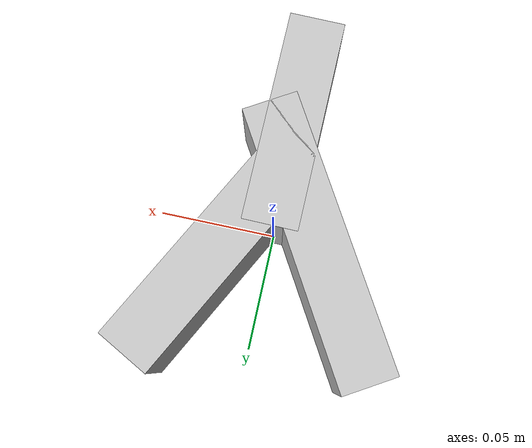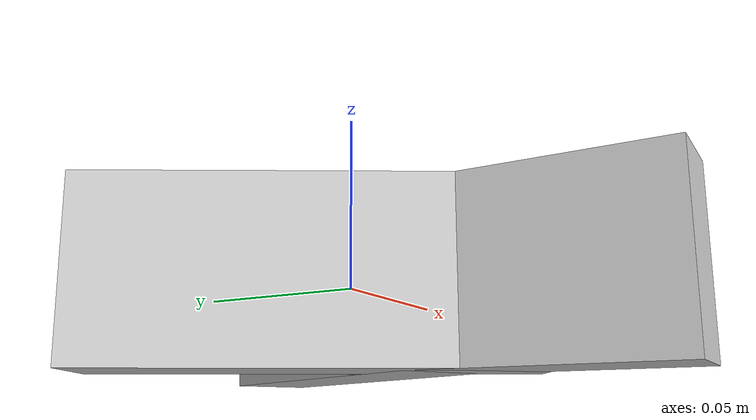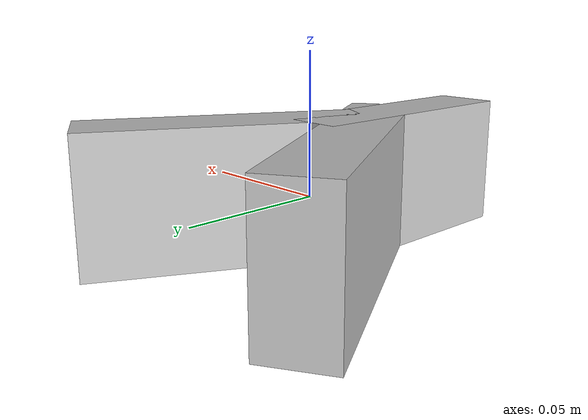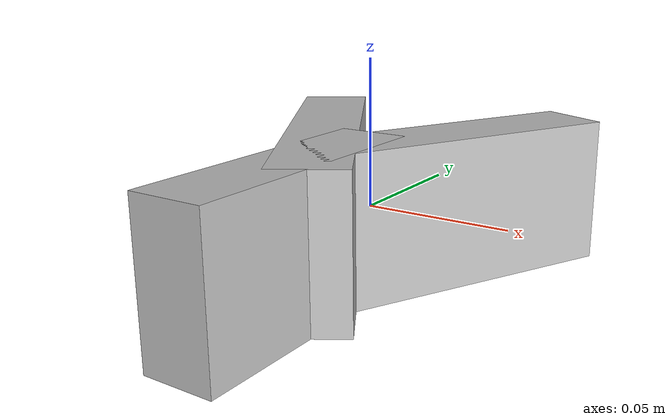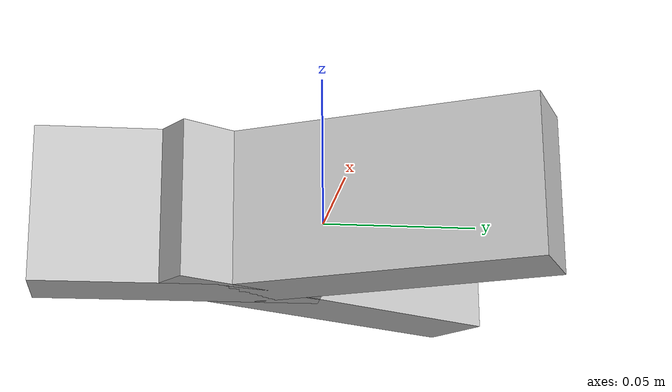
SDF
<?xml version="1.0"?>
<sdf version="1.7">
  <model name="Y_shape_video">
    <link name="Y_shape_video">
      <inertial>
        <pose>0.001039 -0.007211 0.000880 0 0 0</pose>
        <mass>0.05</mass>
        <inertia>
          <ixx>8.64880972e-05</ixx>
          <iyy>3.93848193e-05</iyy>
          <izz>0.000104962143</izz>
          <ixy>-7.43704014e-07</ixy>
          <ixz>-4.5728837e-08</ixz>
          <iyz>3.17296377e-07</iyz>
        </inertia>
      </inertial>
      <visual name="box_0">
        <pose>-0.018960 0.000630 0.000880 0 0 -1.029200</pose>
        <geometry>
          <box><size>0.124800 0.024500 0.050000</size></box>
        </geometry>
        <material>
          <diffuse>0.75 0.75 0.75 1</diffuse>
        </material>
      </visual>
      <collision name="box_0_volume">
        <pose>-0.018960 0.000630 0.000880 0 0 -1.029200</pose>
        <geometry>
          <box><size>0.124800 0.024500 0.050000</size></box>
        </geometry>
        <drake:proximity_properties>
          <drake:compliant_hydroelastic/>
          <drake:hydroelastic_modulus> 3.0e7 </drake:hydroelastic_modulus>
          <drake:mesh_resolution_hint> 0.02 </drake:mesh_resolution_hint>
          <drake:hunt_crossley_dissipation>10</drake:hunt_crossley_dissipation>
          <drake:mu_dynamic>0.3</drake:mu_dynamic>
        </drake:proximity_properties>
      </collision>
      <visual name="box_1">
        <pose>0.024830 0.017730 0.000880 0 0 1.086800</pose>
        <geometry>
          <box><size>0.101000 0.025200 0.050000</size></box>
        </geometry>
        <material>
          <diffuse>0.75 0.75 0.75 1</diffuse>
        </material>
      </visual>
      <collision name="box_1_volume">
        <pose>0.024830 0.017730 0.000880 0 0 1.086800</pose>
        <geometry>
          <box><size>0.101000 0.025200 0.050000</size></box>
        </geometry>
        <drake:proximity_properties>
          <drake:compliant_hydroelastic/>
          <drake:hydroelastic_modulus> 3.0e7 </drake:hydroelastic_modulus>
          <drake:mesh_resolution_hint> 0.02 </drake:mesh_resolution_hint>
          <drake:hunt_crossley_dissipation>10</drake:hunt_crossley_dissipation>
          <drake:mu_dynamic>0.3</drake:mu_dynamic>
        </drake:proximity_properties>
      </collision>
      <visual name="box_2">
        <pose>0.001310 -0.046820 0.000880 0 0 -1.582800</pose>
        <geometry>
          <box><size>0.092000 0.024000 0.050000</size></box>
        </geometry>
        <material>
          <diffuse>0.75 0.75 0.75 1</diffuse>
        </material>
      </visual>
      <collision name="box_2_volume">
        <pose>0.001310 -0.046820 0.000880 0 0 -1.582800</pose>
        <geometry>
          <box><size>0.092000 0.024000 0.050000</size></box>
        </geometry>
        <drake:proximity_properties>
          <drake:compliant_hydroelastic/>
          <drake:hydroelastic_modulus> 3.0e7 </drake:hydroelastic_modulus>
          <drake:mesh_resolution_hint> 0.02 </drake:mesh_resolution_hint>
          <drake:hunt_crossley_dissipation>10</drake:hunt_crossley_dissipation>
          <drake:mu_dynamic>0.3</drake:mu_dynamic>
        </drake:proximity_properties>
      </collision>
    </link>
  </model>
</sdf>
